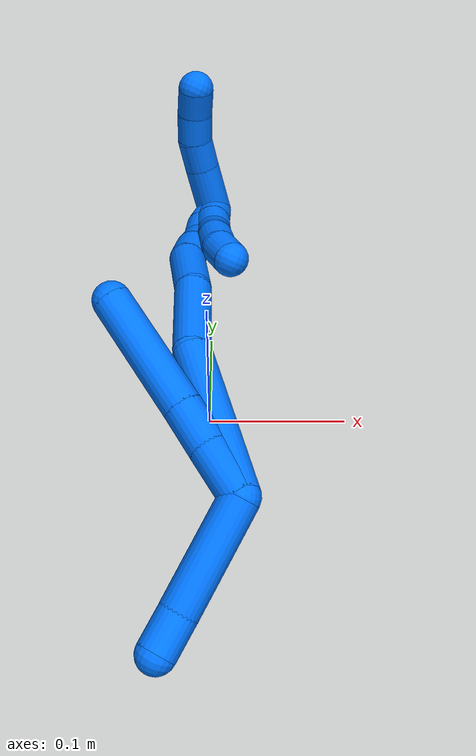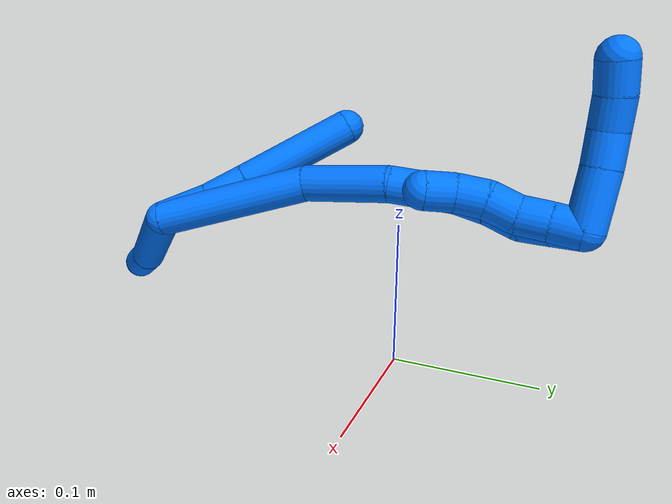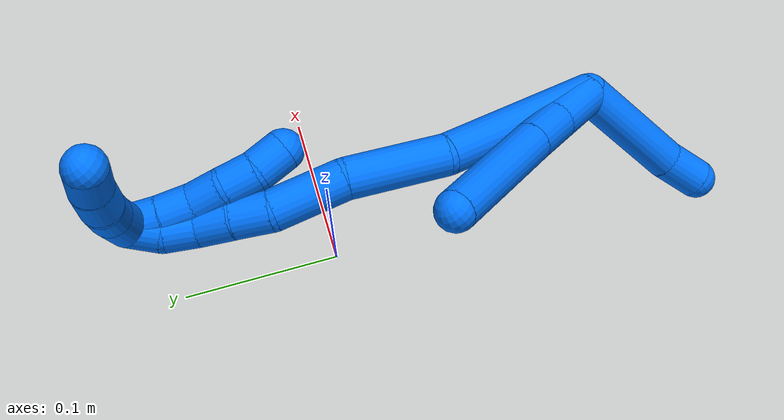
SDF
<sdf version="1.7">
 <world name="default">
  <model name="14">
   <static>0</static>
   <link name="14">
    <collision name="collision-cylinder-e_1_2_8">
     <pose>-0.009102 0.01382 0.007335 -1.08284 -0.526924 0.321612</pose>
     <geometry><cylinder><radius>0.0125</radius><length>0.036201</length></cylinder></geometry>
     <surface>
      <friction><ode><mu>1.16</mu><mu2>1.16</mu2><slip1>0</slip1><slip2>0</slip2></ode></friction>
      <contact><ode><kp>1e+06</kp><kd>1</kd><max_vel>0</max_vel><min_depth>0.001</min_depth></ode></contact>
     </surface>
    </collision>
    <visual name="visual-cylinder-e_1_2_8">
     <pose>-0.009102 0.01382 0.007335 -1.08284 -0.526924 0.321612</pose>
     <geometry><cylinder><radius>0.0125</radius><length>0.036201</length></cylinder></geometry>
     <material><ambient>0 0.462745 1 1</ambient></material>
    </visual>
    <collision name="collision-cylinder-e_2_8_9">
     <pose>-0.026677 0.037884 0.021465 -0.985161 -0.603411 0.330998</pose>
     <geometry><cylinder><radius>0.0125</radius><length>0.029859</length></cylinder></geometry>
     <surface>
      <friction><ode><mu>1.16</mu><mu2>1.16</mu2><slip1>0</slip1><slip2>0</slip2></ode></friction>
      <contact><ode><kp>1e+06</kp><kd>1</kd><max_vel>0</max_vel><min_depth>0.001</min_depth></ode></contact>
     </surface>
    </collision>
    <visual name="visual-cylinder-e_2_8_9">
     <pose>-0.026677 0.037884 0.021465 -0.985161 -0.603411 0.330998</pose>
     <geometry><cylinder><radius>0.0125</radius><length>0.029859</length></cylinder></geometry>
     <material><ambient>0 0.462745 1 1</ambient></material>
    </visual>
    <collision name="collision-cylinder-e_3_9_6">
     <pose>-0.059627 0.076688 0.046877 -0.993097 -0.622711 0.345274</pose>
     <geometry><cylinder><radius>0.0125</radius><length>0.083939</length></cylinder></geometry>
     <surface>
      <friction><ode><mu>1.16</mu><mu2>1.16</mu2><slip1>0</slip1><slip2>0</slip2></ode></friction>
      <contact><ode><kp>1e+06</kp><kd>1</kd><max_vel>0</max_vel><min_depth>0.001</min_depth></ode></contact>
     </surface>
    </collision>
    <visual name="visual-cylinder-e_3_9_6">
     <pose>-0.059627 0.076688 0.046877 -0.993097 -0.622711 0.345274</pose>
     <geometry><cylinder><radius>0.0125</radius><length>0.083939</length></cylinder></geometry>
     <material><ambient>0 0.462745 1 1</ambient></material>
    </visual>
    <collision name="collision-cylinder-e_1_2_10">
     <pose>-0.006055 -0.006382 -0.035962 2.96595 -0.164297 -1.50372</pose>
     <geometry><cylinder><radius>0.0125</radius><length>0.074045</length></cylinder></geometry>
     <surface>
      <friction><ode><mu>1.16</mu><mu2>1.16</mu2><slip1>0</slip1><slip2>0</slip2></ode></friction>
      <contact><ode><kp>1e+06</kp><kd>1</kd><max_vel>0</max_vel><min_depth>0.001</min_depth></ode></contact>
     </surface>
    </collision>
    <visual name="visual-cylinder-e_1_2_10">
     <pose>-0.006055 -0.006382 -0.035962 2.96595 -0.164297 -1.50372</pose>
     <geometry><cylinder><radius>0.0125</radius><length>0.074045</length></cylinder></geometry>
     <material><ambient>0 0.462745 1 1</ambient></material>
    </visual>
    <collision name="collision-cylinder-e_2_10_5">
     <pose>-0.015221 -0.016589 -0.083929 2.83317 -0.242031 -1.32774</pose>
     <geometry><cylinder><radius>0.0125</radius><length>0.025955</length></cylinder></geometry>
     <surface>
      <friction><ode><mu>1.16</mu><mu2>1.16</mu2><slip1>0</slip1><slip2>0</slip2></ode></friction>
      <contact><ode><kp>1e+06</kp><kd>1</kd><max_vel>0</max_vel><min_depth>0.001</min_depth></ode></contact>
     </surface>
    </collision>
    <visual name="visual-cylinder-e_2_10_5">
     <pose>-0.015221 -0.016589 -0.083929 2.83317 -0.242031 -1.32774</pose>
     <geometry><cylinder><radius>0.0125</radius><length>0.025955</length></cylinder></geometry>
     <material><ambient>0 0.462745 1 1</ambient></material>
    </visual>
    <collision name="collision-cylinder-e_1_2_11">
     <pose>-0.013663 0.045012 0.027907 -1.01582 -0.252471 0.141047</pose>
     <geometry><cylinder><radius>0.0125</radius><length>0.10939</length></cylinder></geometry>
     <surface>
      <friction><ode><mu>1.16</mu><mu2>1.16</mu2><slip1>0</slip1><slip2>0</slip2></ode></friction>
      <contact><ode><kp>1e+06</kp><kd>1</kd><max_vel>0</max_vel><min_depth>0.001</min_depth></ode></contact>
     </surface>
    </collision>
    <visual name="visual-cylinder-e_1_2_11">
     <pose>-0.013663 0.045012 0.027907 -1.01582 -0.252471 0.141047</pose>
     <geometry><cylinder><radius>0.0125</radius><length>0.10939</length></cylinder></geometry>
     <material><ambient>0 0.462745 1 1</ambient></material>
    </visual>
    <collision name="collision-cylinder-e_2_11_12">
     <pose>-0.025174 0.116269 0.071185 -1.04094 0.070604 -0.04048</pose>
     <geometry><cylinder><radius>0.0125</radius><length>0.060982</length></cylinder></geometry>
     <surface>
      <friction><ode><mu>1.16</mu><mu2>1.16</mu2><slip1>0</slip1><slip2>0</slip2></ode></friction>
      <contact><ode><kp>1e+06</kp><kd>1</kd><max_vel>0</max_vel><min_depth>0.001</min_depth></ode></contact>
     </surface>
    </collision>
    <visual name="visual-cylinder-e_2_11_12">
     <pose>-0.025174 0.116269 0.071185 -1.04094 0.070604 -0.04048</pose>
     <geometry><cylinder><radius>0.0125</radius><length>0.060982</length></cylinder></geometry>
     <material><ambient>0 0.462745 1 1</ambient></material>
    </visual>
    <collision name="collision-cylinder-e_3_12_13">
     <pose>-0.021416 0.16379 0.093526 -1.25428 0.071664 -0.051948</pose>
     <geometry><cylinder><radius>0.0125</radius><length>0.044891</length></cylinder></geometry>
     <surface>
      <friction><ode><mu>1.16</mu><mu2>1.16</mu2><slip1>0</slip1><slip2>0</slip2></ode></friction>
      <contact><ode><kp>1e+06</kp><kd>1</kd><max_vel>0</max_vel><min_depth>0.001</min_depth></ode></contact>
     </surface>
    </collision>
    <visual name="visual-cylinder-e_3_12_13">
     <pose>-0.021416 0.16379 0.093526 -1.25428 0.071664 -0.051948</pose>
     <geometry><cylinder><radius>0.0125</radius><length>0.044891</length></cylinder></geometry>
     <material><ambient>0 0.462745 1 1</ambient></material>
    </visual>
    <collision name="collision-cylinder-e_4_13_14">
     <pose>-0.015871 0.194947 0.104504 -1.18531 0.353776 -0.2396</pose>
     <geometry><cylinder><radius>0.0125</radius><length>0.022736</length></cylinder></geometry>
     <surface>
      <friction><ode><mu>1.16</mu><mu2>1.16</mu2><slip1>0</slip1><slip2>0</slip2></ode></friction>
      <contact><ode><kp>1e+06</kp><kd>1</kd><max_vel>0</max_vel><min_depth>0.001</min_depth></ode></contact>
     </surface>
    </collision>
    <visual name="visual-cylinder-e_4_13_14">
     <pose>-0.015871 0.194947 0.104504 -1.18531 0.353776 -0.2396</pose>
     <geometry><cylinder><radius>0.0125</radius><length>0.022736</length></cylinder></geometry>
     <material><ambient>0 0.462745 1 1</ambient></material>
    </visual>
    <collision name="collision-cylinder-e_5_14_15">
     <pose>-0.007202 0.214178 0.111329 -1.2783 0.451097 -0.337819</pose>
     <geometry><cylinder><radius>0.0125</radius><length>0.021699</length></cylinder></geometry>
     <surface>
      <friction><ode><mu>1.16</mu><mu2>1.16</mu2><slip1>0</slip1><slip2>0</slip2></ode></friction>
      <contact><ode><kp>1e+06</kp><kd>1</kd><max_vel>0</max_vel><min_depth>0.001</min_depth></ode></contact>
     </surface>
    </collision>
    <visual name="visual-cylinder-e_5_14_15">
     <pose>-0.007202 0.214178 0.111329 -1.2783 0.451097 -0.337819</pose>
     <geometry><cylinder><radius>0.0125</radius><length>0.021699</length></cylinder></geometry>
     <material><ambient>0 0.462745 1 1</ambient></material>
    </visual>
    <collision name="collision-cylinder-e_6_15_16">
     <pose>-0.00028 0.232038 0.118997 -1.05258 0.220187 -0.12826</pose>
     <geometry><cylinder><radius>0.0125</radius><length>0.020079</length></cylinder></geometry>
     <surface>
      <friction><ode><mu>1.16</mu><mu2>1.16</mu2><slip1>0</slip1><slip2>0</slip2></ode></friction>
      <contact><ode><kp>1e+06</kp><kd>1</kd><max_vel>0</max_vel><min_depth>0.001</min_depth></ode></contact>
     </surface>
    </collision>
    <visual name="visual-cylinder-e_6_15_16">
     <pose>-0.00028 0.232038 0.118997 -1.05258 0.220187 -0.12826</pose>
     <geometry><cylinder><radius>0.0125</radius><length>0.020079</length></cylinder></geometry>
     <material><ambient>0 0.462745 1 1</ambient></material>
    </visual>
    <collision name="collision-cylinder-e_7_16_1">
     <pose>0.005945 0.247007 0.130504 -0.770526 0.410193 -0.168319</pose>
     <geometry><cylinder><radius>0.0125</radius><length>0.020223</length></cylinder></geometry>
     <surface>
      <friction><ode><mu>1.16</mu><mu2>1.16</mu2><slip1>0</slip1><slip2>0</slip2></ode></friction>
      <contact><ode><kp>1e+06</kp><kd>1</kd><max_vel>0</max_vel><min_depth>0.001</min_depth></ode></contact>
     </surface>
    </collision>
    <visual name="visual-cylinder-e_7_16_1">
     <pose>0.005945 0.247007 0.130504 -0.770526 0.410193 -0.168319</pose>
     <geometry><cylinder><radius>0.0125</radius><length>0.020223</length></cylinder></geometry>
     <material><ambient>0 0.462745 1 1</ambient></material>
    </visual>
    <collision name="collision-cylinder-e_1_1_17">
     <pose>0.007629 0.244377 0.133711 1.93321 -0.237011 -0.341596</pose>
     <geometry><cylinder><radius>0.0125</radius><length>0.02</length></cylinder></geometry>
     <surface>
      <friction><ode><mu>1.16</mu><mu2>1.16</mu2><slip1>0</slip1><slip2>0</slip2></ode></friction>
      <contact><ode><kp>1e+06</kp><kd>1</kd><max_vel>0</max_vel><min_depth>0.001</min_depth></ode></contact>
     </surface>
    </collision>
    <visual name="visual-cylinder-e_1_1_17">
     <pose>0.007629 0.244377 0.133711 1.93321 -0.237011 -0.341596</pose>
     <geometry><cylinder><radius>0.0125</radius><length>0.02</length></cylinder></geometry>
     <material><ambient>0 0.462745 1 1</ambient></material>
    </visual>
    <collision name="collision-cylinder-e_2_17_18">
     <pose>0.003802 0.225912 0.127118 1.89458 -0.14852 -0.20615</pose>
     <geometry><cylinder><radius>0.0125</radius><length>0.02</length></cylinder></geometry>
     <surface>
      <friction><ode><mu>1.16</mu><mu2>1.16</mu2><slip1>0</slip1><slip2>0</slip2></ode></friction>
      <contact><ode><kp>1e+06</kp><kd>1</kd><max_vel>0</max_vel><min_depth>0.001</min_depth></ode></contact>
     </surface>
    </collision>
    <visual name="visual-cylinder-e_2_17_18">
     <pose>0.003802 0.225912 0.127118 1.89458 -0.14852 -0.20615</pose>
     <geometry><cylinder><radius>0.0125</radius><length>0.02</length></cylinder></geometry>
     <material><ambient>0 0.462745 1 1</ambient></material>
    </visual>
    <collision name="collision-cylinder-e_3_18_19">
     <pose>-0.000348 0.206934 0.123149 1.65627 -0.270246 -0.294058</pose>
     <geometry><cylinder><radius>0.0125</radius><length>0.02</length></cylinder></geometry>
     <surface>
      <friction><ode><mu>1.16</mu><mu2>1.16</mu2><slip1>0</slip1><slip2>0</slip2></ode></friction>
      <contact><ode><kp>1e+06</kp><kd>1</kd><max_vel>0</max_vel><min_depth>0.001</min_depth></ode></contact>
     </surface>
    </collision>
    <visual name="visual-cylinder-e_3_18_19">
     <pose>-0.000348 0.206934 0.123149 1.65627 -0.270246 -0.294058</pose>
     <geometry><cylinder><radius>0.0125</radius><length>0.02</length></cylinder></geometry>
     <material><ambient>0 0.462745 1 1</ambient></material>
    </visual>
    <collision name="collision-cylinder-e_4_19_20">
     <pose>-0.003663 0.187637 0.119962 1.81004 -0.064629 -0.08227</pose>
     <geometry><cylinder><radius>0.0125</radius><length>0.02</length></cylinder></geometry>
     <surface>
      <friction><ode><mu>1.16</mu><mu2>1.16</mu2><slip1>0</slip1><slip2>0</slip2></ode></friction>
      <contact><ode><kp>1e+06</kp><kd>1</kd><max_vel>0</max_vel><min_depth>0.001</min_depth></ode></contact>
     </surface>
    </collision>
    <visual name="visual-cylinder-e_4_19_20">
     <pose>-0.003663 0.187637 0.119962 1.81004 -0.064629 -0.08227</pose>
     <geometry><cylinder><radius>0.0125</radius><length>0.02</length></cylinder></geometry>
     <material><ambient>0 0.462745 1 1</ambient></material>
    </visual>
    <collision name="collision-cylinder-e_5_20_4">
     <pose>-0.00242 0.168279 0.115848 1.74989 0.190101 0.22731</pose>
     <geometry><cylinder><radius>0.0125</radius><length>0.02</length></cylinder></geometry>
     <surface>
      <friction><ode><mu>1.16</mu><mu2>1.16</mu2><slip1>0</slip1><slip2>0</slip2></ode></friction>
      <contact><ode><kp>1e+06</kp><kd>1</kd><max_vel>0</max_vel><min_depth>0.001</min_depth></ode></contact>
     </surface>
    </collision>
    <visual name="visual-cylinder-e_5_20_4">
     <pose>-0.00242 0.168279 0.115848 1.74989 0.190101 0.22731</pose>
     <geometry><cylinder><radius>0.0125</radius><length>0.02</length></cylinder></geometry>
     <material><ambient>0 0.462745 1 1</ambient></material>
    </visual>
    <collision name="collision-cylinder-e_1_1_21">
     <pose>-0.002672 0.251045 0.150661 0.177394 -0.744827 -0.069452</pose>
     <geometry><cylinder><radius>0.0125</radius><length>0.037321</length></cylinder></geometry>
     <surface>
      <friction><ode><mu>1.16</mu><mu2>1.16</mu2><slip1>0</slip1><slip2>0</slip2></ode></friction>
      <contact><ode><kp>1e+06</kp><kd>1</kd><max_vel>0</max_vel><min_depth>0.001</min_depth></ode></contact>
     </surface>
    </collision>
    <visual name="visual-cylinder-e_1_1_21">
     <pose>-0.002672 0.251045 0.150661 0.177394 -0.744827 -0.069452</pose>
     <geometry><cylinder><radius>0.0125</radius><length>0.037321</length></cylinder></geometry>
     <material><ambient>0 0.462745 1 1</ambient></material>
    </visual>
    <collision name="collision-cylinder-e_2_21_22">
     <pose>-0.022706 0.246367 0.172016 0.279916 -0.735067 -0.108379</pose>
     <geometry><cylinder><radius>0.0125</radius><length>0.022025</length></cylinder></geometry>
     <surface>
      <friction><ode><mu>1.16</mu><mu2>1.16</mu2><slip1>0</slip1><slip2>0</slip2></ode></friction>
      <contact><ode><kp>1e+06</kp><kd>1</kd><max_vel>0</max_vel><min_depth>0.001</min_depth></ode></contact>
     </surface>
    </collision>
    <visual name="visual-cylinder-e_2_21_22">
     <pose>-0.022706 0.246367 0.172016 0.279916 -0.735067 -0.108379</pose>
     <geometry><cylinder><radius>0.0125</radius><length>0.022025</length></cylinder></geometry>
     <material><ambient>0 0.462745 1 1</ambient></material>
    </visual>
    <collision name="collision-cylinder-e_3_22_23">
     <pose>-0.035045 0.241162 0.18843 0.331552 -0.500544 -0.085488</pose>
     <geometry><cylinder><radius>0.0125</radius><length>0.020644</length></cylinder></geometry>
     <surface>
      <friction><ode><mu>1.16</mu><mu2>1.16</mu2><slip1>0</slip1><slip2>0</slip2></ode></friction>
      <contact><ode><kp>1e+06</kp><kd>1</kd><max_vel>0</max_vel><min_depth>0.001</min_depth></ode></contact>
     </surface>
    </collision>
    <visual name="visual-cylinder-e_3_22_23">
     <pose>-0.035045 0.241162 0.18843 0.331552 -0.500544 -0.085488</pose>
     <geometry><cylinder><radius>0.0125</radius><length>0.020644</length></cylinder></geometry>
     <material><ambient>0 0.462745 1 1</ambient></material>
    </visual>
    <collision name="collision-cylinder-e_4_23_3">
     <pose>-0.044524 0.234134 0.204928 0.474932 -0.469295 -0.115587</pose>
     <geometry><cylinder><radius>0.0125</radius><length>0.020009</length></cylinder></geometry>
     <surface>
      <friction><ode><mu>1.16</mu><mu2>1.16</mu2><slip1>0</slip1><slip2>0</slip2></ode></friction>
      <contact><ode><kp>1e+06</kp><kd>1</kd><max_vel>0</max_vel><min_depth>0.001</min_depth></ode></contact>
     </surface>
    </collision>
    <visual name="visual-cylinder-e_4_23_3">
     <pose>-0.044524 0.234134 0.204928 0.474932 -0.469295 -0.115587</pose>
     <geometry><cylinder><radius>0.0125</radius><length>0.020009</length></cylinder></geometry>
     <material><ambient>0 0.462745 1 1</ambient></material>
    </visual>
    <collision name="collision-sphere-3">
     <pose>-0.049048 0.230054 0.212863 0 -0 0</pose>
     <geometry><sphere><radius>0.0125</radius></sphere></geometry>
     <surface>
      <friction><ode><mu>1.16</mu><mu2>1.16</mu2><slip1>0</slip1><slip2>0</slip2></ode></friction>
      <contact><ode><kp>1e+06</kp><kd>1</kd><max_vel>0</max_vel><min_depth>0.001</min_depth></ode></contact>
     </surface>
    </collision>
    <visual name="visual-sphere-3">
     <pose>-0.049048 0.230054 0.212863 0 -0 0</pose>
     <geometry><sphere><radius>0.0125</radius></sphere></geometry>
     <material><ambient>0 0.462745 1 1</ambient></material>
    </visual>
    <collision name="collision-sphere-23">
     <pose>-0.039999 0.238214 0.196993 0 -0 0</pose>
     <geometry><sphere><radius>0.0125</radius></sphere></geometry>
     <surface>
      <friction><ode><mu>1.16</mu><mu2>1.16</mu2><slip1>0</slip1><slip2>0</slip2></ode></friction>
      <contact><ode><kp>1e+06</kp><kd>1</kd><max_vel>0</max_vel><min_depth>0.001</min_depth></ode></contact>
     </surface>
    </collision>
    <visual name="visual-sphere-23">
     <pose>-0.039999 0.238214 0.196993 0 -0 0</pose>
     <geometry><sphere><radius>0.0125</radius></sphere></geometry>
     <material><ambient>0 0.462745 1 1</ambient></material>
    </visual>
    <collision name="collision-sphere-22">
     <pose>-0.030092 0.24411 0.179868 0 -0 0</pose>
     <geometry><sphere><radius>0.0125</radius></sphere></geometry>
     <surface>
      <friction><ode><mu>1.16</mu><mu2>1.16</mu2><slip1>0</slip1><slip2>0</slip2></ode></friction>
      <contact><ode><kp>1e+06</kp><kd>1</kd><max_vel>0</max_vel><min_depth>0.001</min_depth></ode></contact>
     </surface>
    </collision>
    <visual name="visual-sphere-22">
     <pose>-0.030092 0.24411 0.179868 0 -0 0</pose>
     <geometry><sphere><radius>0.0125</radius></sphere></geometry>
     <material><ambient>0 0.462745 1 1</ambient></material>
    </visual>
    <collision name="collision-sphere-21">
     <pose>-0.015321 0.248624 0.164165 0 -0 0</pose>
     <geometry><sphere><radius>0.0125</radius></sphere></geometry>
     <surface>
      <friction><ode><mu>1.16</mu><mu2>1.16</mu2><slip1>0</slip1><slip2>0</slip2></ode></friction>
      <contact><ode><kp>1e+06</kp><kd>1</kd><max_vel>0</max_vel><min_depth>0.001</min_depth></ode></contact>
     </surface>
    </collision>
    <visual name="visual-sphere-21">
     <pose>-0.015321 0.248624 0.164165 0 -0 0</pose>
     <geometry><sphere><radius>0.0125</radius></sphere></geometry>
     <material><ambient>0 0.462745 1 1</ambient></material>
    </visual>
    <collision name="collision-sphere-4">
     <pose>-0.00053 0.158616 0.114098 0 -0 0</pose>
     <geometry><sphere><radius>0.0125</radius></sphere></geometry>
     <surface>
      <friction><ode><mu>1.16</mu><mu2>1.16</mu2><slip1>0</slip1><slip2>0</slip2></ode></friction>
      <contact><ode><kp>1e+06</kp><kd>1</kd><max_vel>0</max_vel><min_depth>0.001</min_depth></ode></contact>
     </surface>
    </collision>
    <visual name="visual-sphere-4">
     <pose>-0.00053 0.158616 0.114098 0 -0 0</pose>
     <geometry><sphere><radius>0.0125</radius></sphere></geometry>
     <material><ambient>0 0.462745 1 1</ambient></material>
    </visual>
    <collision name="collision-sphere-20">
     <pose>-0.004309 0.177942 0.117597 0 -0 0</pose>
     <geometry><sphere><radius>0.0125</radius></sphere></geometry>
     <surface>
      <friction><ode><mu>1.16</mu><mu2>1.16</mu2><slip1>0</slip1><slip2>0</slip2></ode></friction>
      <contact><ode><kp>1e+06</kp><kd>1</kd><max_vel>0</max_vel><min_depth>0.001</min_depth></ode></contact>
     </surface>
    </collision>
    <visual name="visual-sphere-20">
     <pose>-0.004309 0.177942 0.117597 0 -0 0</pose>
     <geometry><sphere><radius>0.0125</radius></sphere></geometry>
     <material><ambient>0 0.462745 1 1</ambient></material>
    </visual>
    <collision name="collision-sphere-5">
     <pose>-0.018331 -0.020414 -0.095933 0 -0 0</pose>
     <geometry><sphere><radius>0.0125</radius></sphere></geometry>
     <surface>
      <friction><ode><mu>1.16</mu><mu2>1.16</mu2><slip1>0</slip1><slip2>0</slip2></ode></friction>
      <contact><ode><kp>1e+06</kp><kd>1</kd><max_vel>0</max_vel><min_depth>0.001</min_depth></ode></contact>
     </surface>
    </collision>
    <visual name="visual-sphere-5">
     <pose>-0.018331 -0.020414 -0.095933 0 -0 0</pose>
     <geometry><sphere><radius>0.0125</radius></sphere></geometry>
     <material><ambient>0 0.462745 1 1</ambient></material>
    </visual>
    <collision name="collision-sphere-10">
     <pose>-0.012111 -0.012765 -0.071924 0 -0 0</pose>
     <geometry><sphere><radius>0.0125</radius></sphere></geometry>
     <surface>
      <friction><ode><mu>1.16</mu><mu2>1.16</mu2><slip1>0</slip1><slip2>0</slip2></ode></friction>
      <contact><ode><kp>1e+06</kp><kd>1</kd><max_vel>0</max_vel><min_depth>0.001</min_depth></ode></contact>
     </surface>
    </collision>
    <visual name="visual-sphere-10">
     <pose>-0.012111 -0.012765 -0.071924 0 -0 0</pose>
     <geometry><sphere><radius>0.0125</radius></sphere></geometry>
     <material><ambient>0 0.462745 1 1</ambient></material>
    </visual>
    <collision name="collision-sphere-6">
     <pose>-0.084105 0.105247 0.065495 0 -0 0</pose>
     <geometry><sphere><radius>0.0125</radius></sphere></geometry>
     <surface>
      <friction><ode><mu>1.16</mu><mu2>1.16</mu2><slip1>0</slip1><slip2>0</slip2></ode></friction>
      <contact><ode><kp>1e+06</kp><kd>1</kd><max_vel>0</max_vel><min_depth>0.001</min_depth></ode></contact>
     </surface>
    </collision>
    <visual name="visual-sphere-6">
     <pose>-0.084105 0.105247 0.065495 0 -0 0</pose>
     <geometry><sphere><radius>0.0125</radius></sphere></geometry>
     <material><ambient>0 0.462745 1 1</ambient></material>
    </visual>
    <collision name="collision-sphere-9">
     <pose>-0.035149 0.048128 0.028259 0 -0 0</pose>
     <geometry><sphere><radius>0.0125</radius></sphere></geometry>
     <surface>
      <friction><ode><mu>1.16</mu><mu2>1.16</mu2><slip1>0</slip1><slip2>0</slip2></ode></friction>
      <contact><ode><kp>1e+06</kp><kd>1</kd><max_vel>0</max_vel><min_depth>0.001</min_depth></ode></contact>
     </surface>
    </collision>
    <visual name="visual-sphere-9">
     <pose>-0.035149 0.048128 0.028259 0 -0 0</pose>
     <geometry><sphere><radius>0.0125</radius></sphere></geometry>
     <material><ambient>0 0.462745 1 1</ambient></material>
    </visual>
    <collision name="collision-sphere-2">
     <geometry><sphere><radius>0.0125</radius></sphere></geometry>
     <surface>
      <friction><ode><mu>1.16</mu><mu2>1.16</mu2><slip1>0</slip1><slip2>0</slip2></ode></friction>
      <contact><ode><kp>1e+06</kp><kd>1</kd><max_vel>0</max_vel><min_depth>0.001</min_depth></ode></contact>
     </surface>
    </collision>
    <visual name="visual-sphere-2">
     <geometry><sphere><radius>0.0125</radius></sphere></geometry>
     <material><ambient>0 0.462745 1 1</ambient></material>
    </visual>
    <collision name="collision-sphere-19">
     <pose>-0.003017 0.197332 0.122326 0 -0 0</pose>
     <geometry><sphere><radius>0.0125</radius></sphere></geometry>
     <surface>
      <friction><ode><mu>1.16</mu><mu2>1.16</mu2><slip1>0</slip1><slip2>0</slip2></ode></friction>
      <contact><ode><kp>1e+06</kp><kd>1</kd><max_vel>0</max_vel><min_depth>0.001</min_depth></ode></contact>
     </surface>
    </collision>
    <visual name="visual-sphere-19">
     <pose>-0.003017 0.197332 0.122326 0 -0 0</pose>
     <geometry><sphere><radius>0.0125</radius></sphere></geometry>
     <material><ambient>0 0.462745 1 1</ambient></material>
    </visual>
    <collision name="collision-sphere-8">
     <pose>-0.018205 0.027639 0.01467 0 -0 0</pose>
     <geometry><sphere><radius>0.0125</radius></sphere></geometry>
     <surface>
      <friction><ode><mu>1.16</mu><mu2>1.16</mu2><slip1>0</slip1><slip2>0</slip2></ode></friction>
      <contact><ode><kp>1e+06</kp><kd>1</kd><max_vel>0</max_vel><min_depth>0.001</min_depth></ode></contact>
     </surface>
    </collision>
    <visual name="visual-sphere-8">
     <pose>-0.018205 0.027639 0.01467 0 -0 0</pose>
     <geometry><sphere><radius>0.0125</radius></sphere></geometry>
     <material><ambient>0 0.462745 1 1</ambient></material>
    </visual>
    <collision name="collision-sphere-11">
     <pose>-0.027325 0.090025 0.055813 0 -0 0</pose>
     <geometry><sphere><radius>0.0125</radius></sphere></geometry>
     <surface>
      <friction><ode><mu>1.16</mu><mu2>1.16</mu2><slip1>0</slip1><slip2>0</slip2></ode></friction>
      <contact><ode><kp>1e+06</kp><kd>1</kd><max_vel>0</max_vel><min_depth>0.001</min_depth></ode></contact>
     </surface>
    </collision>
    <visual name="visual-sphere-11">
     <pose>-0.027325 0.090025 0.055813 0 -0 0</pose>
     <geometry><sphere><radius>0.0125</radius></sphere></geometry>
     <material><ambient>0 0.462745 1 1</ambient></material>
    </visual>
    <collision name="collision-sphere-12">
     <pose>-0.023023 0.142514 0.086557 0 -0 0</pose>
     <geometry><sphere><radius>0.0125</radius></sphere></geometry>
     <surface>
      <friction><ode><mu>1.16</mu><mu2>1.16</mu2><slip1>0</slip1><slip2>0</slip2></ode></friction>
      <contact><ode><kp>1e+06</kp><kd>1</kd><max_vel>0</max_vel><min_depth>0.001</min_depth></ode></contact>
     </surface>
    </collision>
    <visual name="visual-sphere-12">
     <pose>-0.023023 0.142514 0.086557 0 -0 0</pose>
     <geometry><sphere><radius>0.0125</radius></sphere></geometry>
     <material><ambient>0 0.462745 1 1</ambient></material>
    </visual>
    <collision name="collision-sphere-13">
     <pose>-0.019809 0.185065 0.100494 0 -0 0</pose>
     <geometry><sphere><radius>0.0125</radius></sphere></geometry>
     <surface>
      <friction><ode><mu>1.16</mu><mu2>1.16</mu2><slip1>0</slip1><slip2>0</slip2></ode></friction>
      <contact><ode><kp>1e+06</kp><kd>1</kd><max_vel>0</max_vel><min_depth>0.001</min_depth></ode></contact>
     </surface>
    </collision>
    <visual name="visual-sphere-13">
     <pose>-0.019809 0.185065 0.100494 0 -0 0</pose>
     <geometry><sphere><radius>0.0125</radius></sphere></geometry>
     <material><ambient>0 0.462745 1 1</ambient></material>
    </visual>
    <collision name="collision-sphere-14">
     <pose>-0.011932 0.204828 0.108514 0 -0 0</pose>
     <geometry><sphere><radius>0.0125</radius></sphere></geometry>
     <surface>
      <friction><ode><mu>1.16</mu><mu2>1.16</mu2><slip1>0</slip1><slip2>0</slip2></ode></friction>
      <contact><ode><kp>1e+06</kp><kd>1</kd><max_vel>0</max_vel><min_depth>0.001</min_depth></ode></contact>
     </surface>
    </collision>
    <visual name="visual-sphere-14">
     <pose>-0.011932 0.204828 0.108514 0 -0 0</pose>
     <geometry><sphere><radius>0.0125</radius></sphere></geometry>
     <material><ambient>0 0.462745 1 1</ambient></material>
    </visual>
    <collision name="collision-sphere-15">
     <pose>-0.002473 0.223527 0.114145 0 -0 0</pose>
     <geometry><sphere><radius>0.0125</radius></sphere></geometry>
     <surface>
      <friction><ode><mu>1.16</mu><mu2>1.16</mu2><slip1>0</slip1><slip2>0</slip2></ode></friction>
      <contact><ode><kp>1e+06</kp><kd>1</kd><max_vel>0</max_vel><min_depth>0.001</min_depth></ode></contact>
     </surface>
    </collision>
    <visual name="visual-sphere-15">
     <pose>-0.002473 0.223527 0.114145 0 -0 0</pose>
     <geometry><sphere><radius>0.0125</radius></sphere></geometry>
     <material><ambient>0 0.462745 1 1</ambient></material>
    </visual>
    <collision name="collision-sphere-16">
     <pose>0.001913 0.240549 0.12385 0 -0 0</pose>
     <geometry><sphere><radius>0.0125</radius></sphere></geometry>
     <surface>
      <friction><ode><mu>1.16</mu><mu2>1.16</mu2><slip1>0</slip1><slip2>0</slip2></ode></friction>
      <contact><ode><kp>1e+06</kp><kd>1</kd><max_vel>0</max_vel><min_depth>0.001</min_depth></ode></contact>
     </surface>
    </collision>
    <visual name="visual-sphere-16">
     <pose>0.001913 0.240549 0.12385 0 -0 0</pose>
     <geometry><sphere><radius>0.0125</radius></sphere></geometry>
     <material><ambient>0 0.462745 1 1</ambient></material>
    </visual>
    <collision name="collision-sphere-1">
     <pose>0.009977 0.253466 0.137157 0 -0 0</pose>
     <geometry><sphere><radius>0.0125</radius></sphere></geometry>
     <surface>
      <friction><ode><mu>1.16</mu><mu2>1.16</mu2><slip1>0</slip1><slip2>0</slip2></ode></friction>
      <contact><ode><kp>1e+06</kp><kd>1</kd><max_vel>0</max_vel><min_depth>0.001</min_depth></ode></contact>
     </surface>
    </collision>
    <visual name="visual-sphere-1">
     <pose>0.009977 0.253466 0.137157 0 -0 0</pose>
     <geometry><sphere><radius>0.0125</radius></sphere></geometry>
     <material><ambient>0 0.462745 1 1</ambient></material>
    </visual>
    <collision name="collision-sphere-18">
     <pose>0.002322 0.216536 0.123972 0 -0 0</pose>
     <geometry><sphere><radius>0.0125</radius></sphere></geometry>
     <surface>
      <friction><ode><mu>1.16</mu><mu2>1.16</mu2><slip1>0</slip1><slip2>0</slip2></ode></friction>
      <contact><ode><kp>1e+06</kp><kd>1</kd><max_vel>0</max_vel><min_depth>0.001</min_depth></ode></contact>
     </surface>
    </collision>
    <visual name="visual-sphere-18">
     <pose>0.002322 0.216536 0.123972 0 -0 0</pose>
     <geometry><sphere><radius>0.0125</radius></sphere></geometry>
     <material><ambient>0 0.462745 1 1</ambient></material>
    </visual>
    <collision name="collision-sphere-17">
     <pose>0.005281 0.235288 0.130265 0 -0 0</pose>
     <geometry><sphere><radius>0.0125</radius></sphere></geometry>
     <surface>
      <friction><ode><mu>1.16</mu><mu2>1.16</mu2><slip1>0</slip1><slip2>0</slip2></ode></friction>
      <contact><ode><kp>1e+06</kp><kd>1</kd><max_vel>0</max_vel><min_depth>0.001</min_depth></ode></contact>
     </surface>
    </collision>
    <visual name="visual-sphere-17">
     <pose>0.005281 0.235288 0.130265 0 -0 0</pose>
     <geometry><sphere><radius>0.0125</radius></sphere></geometry>
     <material><ambient>0 0.462745 1 1</ambient></material>
    </visual>
    <inertial>
     <pose>-0.017977 0.120518 0.06828 0 -0 0</pose>
     <mass>0.75</mass>
     <inertia>
      <ixx>0.000187</ixx>
      <ixy>0</ixy>
      <ixz>0</ixz>
      <iyy>0.000135</iyy>
      <iyz>0</iyz>
      <izz>-6.6e-05</izz>
     </inertia>
    </inertial>
   </link>
   <pose>0.022633 -0.17154 0.089584 -0.382016 0.52947 0.154085</pose>
  </model>
 </world>
</sdf>
